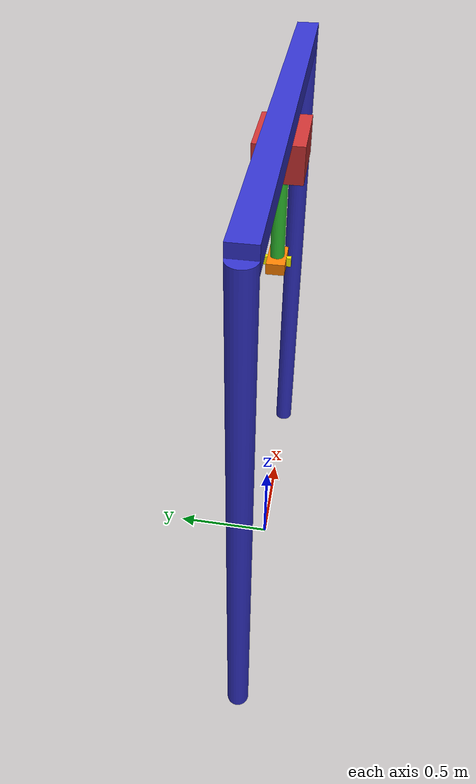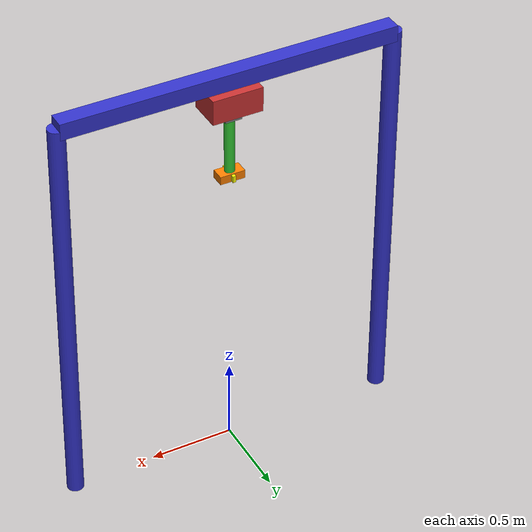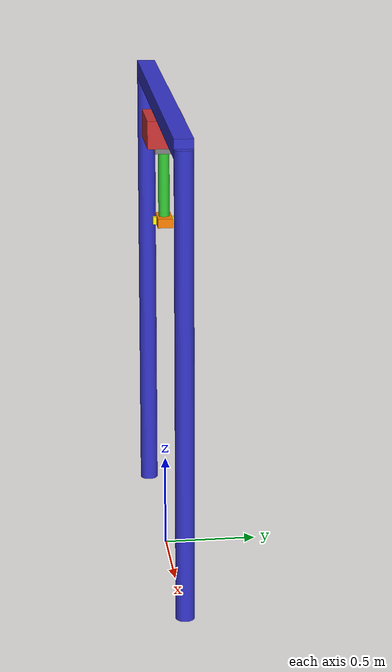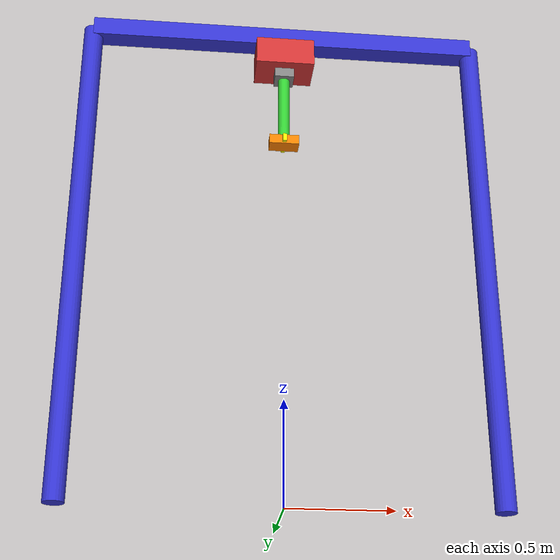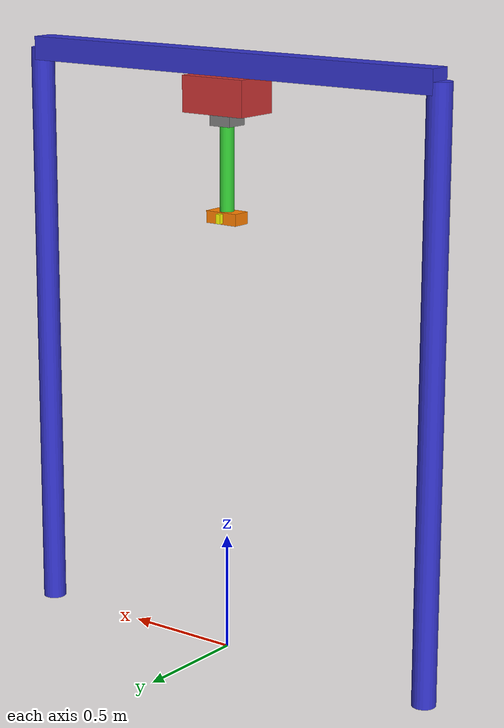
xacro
<?xml version="1.0"?>
<robot xmlns:xacro="http://www.ros.org/wiki/xacro" name="nezha_gantry">

  <xacro:include filename="$(find nezha_description)/nezha_gantry_velocity/config/materials.xacro" />
  <xacro:include filename="$(find nezha_description)/nezha_gantry_velocity/config/nezha_gantry.gazebo" />

  <xacro:property name="PI" value="3.1415926535897931"/>

  <xacro:property name="frame_width" value="2.0"/>
  <xacro:property name="frame_height" value="2.5"/>
  <xacro:property name="frame_depth" value="0.1"/>
  <xacro:property name="pillar_radius" value="0.05"/>

  <xacro:property name="slider_length" value="0.3"/>
  <xacro:property name="slider_width" value="0.2"/>
  <xacro:property name="slider_height" value="0.15"/>

  <xacro:property name="lift_arm_length" value="0.4"/>
  <xacro:property name="lift_arm_radius" value="0.03"/>
  <xacro:property name="lift_range" value="1.8"/>

  <xacro:property name="gripper_palm_length" value="0.15"/>
  <xacro:property name="gripper_finger_length" value="0.1"/>
  <xacro:property name="gripper_finger_width" value="0.02"/>
    <xacro:property name="is_static" value="true"/>
<link name="world"/>
<joint name="world_to_base" type="fixed">
  <parent link="world"/>
  <child link="base_link"/>
  <origin xyz="0 0 0" rpy="0 0 0"/>
</joint>
<link name="base_link"/>
  <link name="left_pillar">
    <visual>
      <geometry>
        <cylinder radius="${pillar_radius}" length="${frame_height}"/>
      </geometry>
      <material name="blue"/>
    </visual>
    <collision>
      <geometry>
        <cylinder radius="${pillar_radius}" length="${frame_height}"/>
      </geometry>
    </collision>
    <inertial>
      <mass value="10.0"/>
      <inertia ixx="0.5" ixy="0.0" ixz="0.0" iyy="0.5" iyz="0.0" izz="0.1"/>
    </inertial>
  </link>

  <joint name="base_to_left_pillar" type="fixed">
    <parent link="base_link"/>
    <child link="left_pillar"/>
    <origin xyz="${-frame_width/2} 0 ${frame_height/2}" rpy="0 0 0"/>
  </joint>

  <link name="right_pillar">
    <visual>
      <geometry>
        <cylinder radius="${pillar_radius}" length="${frame_height}"/>
      </geometry>
      <material name="blue"/>
    </visual>
    <collision>
      <geometry>
        <cylinder radius="${pillar_radius}" length="${frame_height}"/>
      </geometry>
    </collision>
    <inertial>
      <mass value="10.0"/>
      <inertia ixx="0.5" ixy="0.0" ixz="0.0" iyy="0.5" iyz="0.0" izz="0.1"/>
    </inertial>
  </link>

  <joint name="base_to_right_pillar" type="fixed">
    <parent link="base_link"/>
    <child link="right_pillar"/>
    <origin xyz="${frame_width/2} 0 ${frame_height/2}" rpy="0 0 0"/>
  </joint>

  <link name="top_beam">
    <visual>
      <geometry>
        <box size="${frame_width} ${frame_depth} ${frame_depth}"/>
      </geometry>
      <material name="blue"/>
    </visual>
    <collision>
      <geometry>
        <box size="${frame_width} ${frame_depth} ${frame_depth}"/>
      </geometry>
    </collision>
    <inertial>
      <mass value="15.0"/>
      <inertia ixx="0.5" ixy="0.0" ixz="0.0" iyy="0.5" iyz="0.0" izz="0.1"/>
    </inertial>
  </link>

  <joint name="pillars_to_beam" type="fixed">
    <parent link="base_link"/>
    <child link="top_beam"/>
    <origin xyz="0 0 ${frame_height}" rpy="0 0 0"/>
  </joint>

  <link name="horizontal_slider">
    <visual>
      <geometry>
        <box size="${slider_length} ${slider_width} ${slider_height}"/>
      </geometry>
      <material name="red"/>
    </visual>
    <collision>
      <geometry>
        <box size="${slider_length} ${slider_width} ${slider_height}"/>
      </geometry>
    </collision>
    <inertial>
      <mass value="5.0"/>
      <inertia ixx="0.1" ixy="0.0" ixz="0.0" iyy="0.1" iyz="0.0" izz="0.1"/>
    </inertial>
  </link>

<joint name="horizontal_slider_joint" type="prismatic">
  <parent link="top_beam"/>
  <child link="horizontal_slider"/>
  <origin xyz="0 0 ${-slider_height/2 - frame_depth/2}" rpy="0 0 0"/>
  <axis xyz="1 0 0"/>
  <limit lower="${-frame_width/2 + slider_length/2}"
         upper="${frame_width/2 - slider_length/2}"
         effort="100" velocity="0.5"/>
  <dynamics damping="3.0" friction="0.2"/>
</joint>

<joint name="slider_to_connector" type="fixed">
  <parent link="horizontal_slider"/>
  <child link="lift_connector"/>
  <origin xyz="0 0 ${-slider_height/2 - 0.001}" rpy="0 0 0"/>
</joint>

<joint name="vertical_lift_joint" type="prismatic">
  <parent link="lift_connector"/>
  <child link="vertical_lift_arm"/>
  <origin xyz="0 0 0" rpy="0 0 0"/>
  <axis xyz="0 0 -1"/>
  <limit lower="${lift_range}" upper="-${lift_range}" effort="300" velocity="1"/>
  <dynamics damping="0.2" friction="0.05"/>
</joint>

  <link name="lift_connector">
    <visual>
      <geometry>
        <box size="0.1 0.1 0.1"/>
      </geometry>
      <material name="gray"/>
    </visual>
    <collision>
      <geometry>
        <box size="0.1 0.1 0.1"/>
      </geometry>
    </collision>
    <inertial>
      <mass value="1.0"/>
      <inertia ixx="0.01" ixy="0.0" ixz="0.0" iyy="0.01" iyz="0.0" izz="0.01"/>
    </inertial>
  </link>

  <link name="vertical_lift_arm">
    <visual>
      <origin xyz="0 0 ${-lift_arm_length/2}" rpy="0 0 0"/>
      <geometry>
        <cylinder radius="${lift_arm_radius}" length="${lift_arm_length}"/>
      </geometry>
      <material name="green"/>
    </visual>
    <collision>
      <origin xyz="0 0 ${-lift_arm_length/2}" rpy="0 0 0"/>
      <geometry>
        <cylinder radius="${lift_arm_radius}" length="${lift_arm_length}"/>
      </geometry>
    </collision>
    <inertial>
      <mass value="3.0"/>
      <origin xyz="0 0 ${-lift_arm_length/2}" rpy="0 0 0"/>
      <inertia ixx="0.05" ixy="0.0" ixz="0.0" iyy="0.05" iyz="0.0" izz="0.01"/>
    </inertial>
  </link>

  <link name="gripper_base">
    <visual>
      <geometry>
        <box size="${gripper_palm_length} 0.08 0.05"/>
      </geometry>
      <material name="orange"/>
    </visual>
    <collision>
      <geometry>
        <box size="${gripper_palm_length} 0.08 0.05"/>
      </geometry>
    </collision>
    <inertial>
      <mass value="0.5"/>
      <inertia ixx="0.001" ixy="0.0" ixz="0.0" iyy="0.001" iyz="0.0" izz="0.001"/>
    </inertial>
  </link>

  <joint name="lift_to_gripper" type="fixed">
    <parent link="vertical_lift_arm"/>
    <child link="gripper_base"/>
    <origin xyz="0 0 ${-lift_arm_length - 0.025}" rpy="0 0 0"/>
  </joint>

  <link name="left_finger">
    <visual>
      <origin xyz="0 ${gripper_finger_length/2} 0" rpy="0 0 0"/>
      <geometry>
        <box size="${gripper_finger_width} ${gripper_finger_length} 0.04"/>
      </geometry>
      <material name="yellow"/>
    </visual>
    <collision>
      <origin xyz="0 ${gripper_finger_length/2} 0" rpy="0 0 0"/>
      <geometry>
        <box size="${gripper_finger_width} ${gripper_finger_length} 0.04"/>
      </geometry>
    </collision>
    <inertial>
      <mass value="0.1"/>
      <origin xyz="0 ${gripper_finger_length/2} 0" rpy="0 0 0"/>
      <inertia ixx="0.0001" ixy="0.0" ixz="0.0" iyy="0.0001" iyz="0.0" izz="0.0001"/>
    </inertial>
  </link>

  <joint name="left_finger_joint" type="prismatic">
    <parent link="gripper_base"/>
    <child link="left_finger"/>
    <origin xyz="0 ${-0.04} 0" rpy="0 0 0"/>
    <axis xyz="0 -1 0"/>
    <limit lower="0" upper="0.08" effort="50" velocity="0.1"/>
    <dynamics damping="5.0" friction="0.5"/>
  </joint>

  <link name="right_finger">
    <visual>
      <origin xyz="0 ${-gripper_finger_length/2} 0" rpy="0 0 0"/>
      <geometry>
        <box size="${gripper_finger_width} ${gripper_finger_length} 0.04"/>
      </geometry>
      <material name="yellow"/>
    </visual>
    <collision>
      <origin xyz="0 ${-gripper_finger_length/2} 0" rpy="0 0 0"/>
      <geometry>
        <box size="${gripper_finger_width} ${gripper_finger_length} 0.04"/>
      </geometry>
    </collision>
    <inertial>
      <mass value="0.1"/>
      <origin xyz="0 ${-gripper_finger_length/2} 0" rpy="0 0 0"/>
      <inertia ixx="0.0001" ixy="0.0" ixz="0.0" iyy="0.0001" iyz="0.0" izz="0.0001"/>
    </inertial>
  </link>

  <joint name="right_finger_joint" type="prismatic">
    <parent link="gripper_base"/>
    <child link="right_finger"/>
    <origin xyz="0 ${0.04} 0" rpy="0 0 0"/>
    <axis xyz="0 1 0"/>
    <limit lower="0" upper="0.08" effort="50" velocity="0.1"/>
    <dynamics damping="5.0" friction="0.5"/>
  </joint>

<!-- 垂直升降关节 - 支持双接口 -->
  <transmission name="vertical_lift_trans">
    <type>transmission_interface/SimpleTransmission</type>
    <joint name="vertical_lift_joint">
      <hardwareInterface>hardware_interface/VelocityJointInterface</hardwareInterface>
    </joint>
    <actuator name="vertical_lift_motor">
      <hardwareInterface>hardware_interface/VelocityJointInterface</hardwareInterface>
      <mechanicalReduction>1</mechanicalReduction>
    </actuator>
  </transmission>

<!-- 水平滑块关节 - 支持双接口 -->
<transmission name="horizontal_slider_trans">
  <type>transmission_interface/SimpleTransmission</type>
  <joint name="horizontal_slider_joint">
    <hardwareInterface>hardware_interface/VelocityJointInterface</hardwareInterface>
  </joint>
  <actuator name="horizontal_slider_motor">
    <hardwareInterface>hardware_interface/VelocityJointInterface</hardwareInterface>
    <mechanicalReduction>1</mechanicalReduction>
  </actuator>
</transmission>

<!-- 左手指关节 - 支持双接口 -->
<transmission name="left_finger_trans">
  <type>transmission_interface/SimpleTransmission</type>
  <joint name="left_finger_joint">
    <hardwareInterface>hardware_interface/VelocityJointInterface</hardwareInterface>
  </joint>
  <actuator name="left_finger_motor">
    <hardwareInterface>hardware_interface/VelocityJointInterface</hardwareInterface>
    <mechanicalReduction>1</mechanicalReduction>
  </actuator>
</transmission>

<!-- 右手指关节 - 支持双接口 -->
<transmission name="right_finger_trans">
  <type>transmission_interface/SimpleTransmission</type>
  <joint name="right_finger_joint">
    <hardwareInterface>hardware_interface/VelocityJointInterface</hardwareInterface>
  </joint>
  <actuator name="right_finger_motor">
    <hardwareInterface>hardware_interface/VelocityJointInterface</hardwareInterface>
    <mechanicalReduction>1</mechanicalReduction>
  </actuator>
</transmission>

</robot>

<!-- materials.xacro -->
<robot xmlns:xacro="http://www.ros.org/wiki/xacro">

  <material name="blue">
    <color rgba="0.2 0.2 0.8 1.0"/>
  </material>

  <material name="red">
    <color rgba="0.8 0.2 0.2 1.0"/>
  </material>

  <material name="green">
    <color rgba="0.2 0.8 0.2 1.0"/>
  </material>

  <material name="gray">
    <color rgba="0.5 0.5 0.5 1.0"/>
  </material>

  <material name="orange">
    <color rgba="1.0 0.5 0.0 1.0"/>
  </material>

  <material name="yellow">
    <color rgba="1.0 1.0 0.0 1.0"/>
  </material>

  <material name="black">
    <color rgba="0.1 0.1 0.1 1.0"/>
  </material>

</robot>
